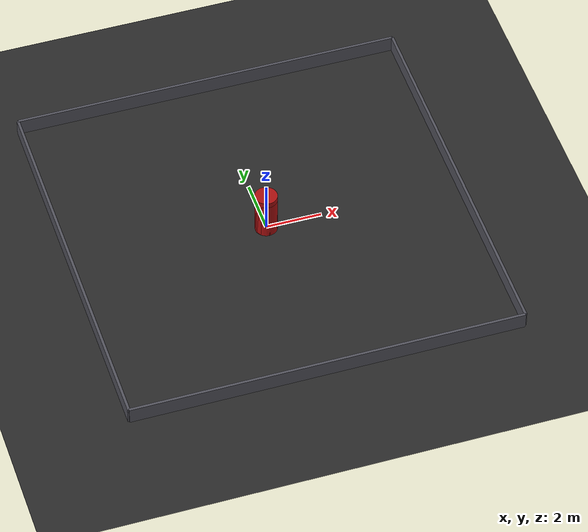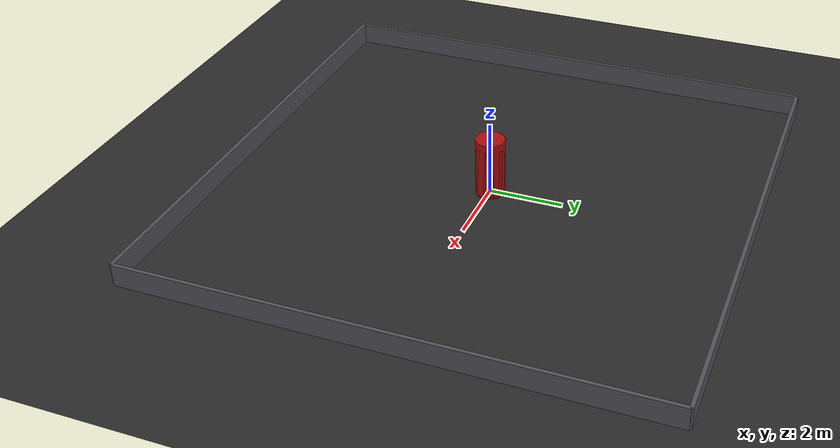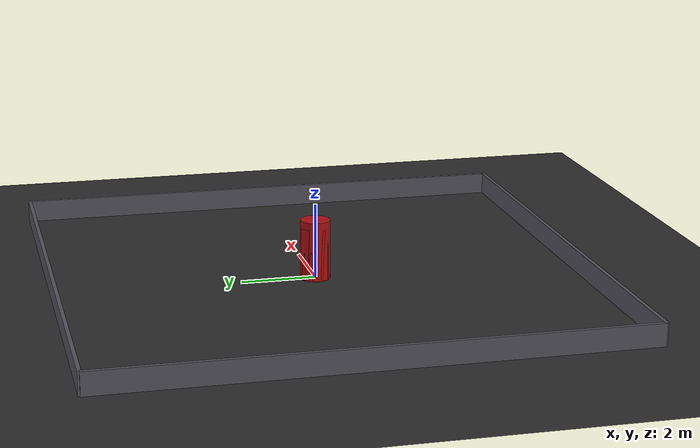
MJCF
<mujoco model="two_wheel_two_cams">
  <option timestep="0.002" gravity="0 0 -9.81" />
  <size nstack="300000" nuser_sensor="0" />
  <visual>
    <map znear="0.001" />
  </visual>
  <asset>
    <texture name="texplane" type="2d" builtin="checker" width="128" height="128" rgb1="0.8 0.8 0.8" rgb2="0.9 0.9 0.9" />
    <texture name="texwall" type="2d" builtin="checker" width="64" height="64" rgb1="0.75 0.75 0.82" rgb2="0.55 0.55 0.62" />
    <texture name="texobs" type="2d" builtin="checker" width="32" height="32" rgb1="0.7 0.2 0.2" rgb2="0.9 0.4 0.4" random="0.3" />
    <material name="matplane" texture="texplane" texrepeat="6 6" reflectance="0.0" texuniform="true" rgba="0.2 0.2 0.2 1" specular="0.05" />
    <material name="matgoal" rgba="0.2 0.85 0.2 1" />
    <material name="matwall" texture="texwall" texrepeat="2 1" texuniform="true" rgba="0.5 0.5 0.5 1" specular="0.05" />
    <material name="matrobot" rgba="0.2 0.4 0.8 1" />
    <material name="matwheel" rgba="0.1 0.1 0.1 1" />
    <material name="matobs" texture="texobs" texrepeat="3 3" texuniform="true" rgba="0.85 0.2 0.2 1" specular="0.05" />
  </asset>
  <worldbody>
    <light name="light_top" pos="0 0 6" dir="0 0 -1" diffuse="0.3 0.3 0.3" specular="0.0 0.0 0.0" ambient="0.6 0.6 0.6" directional="true" castshadow="false"/>
    <light name="light_west" pos="-4 0 3" dir="1 0 -0.4" diffuse="0.1 0.1 0.1" specular="0.0 0.0 0.0" ambient="0.3 0.3 0.3" directional="true" castshadow="false"/>
    <light name="light_east" pos="4 0 3" dir="-1 0 -0.4" diffuse="0.1 0.1 0.1" specular="0.0 0.0 0.0" ambient="0.3 0.3 0.3" directional="true" castshadow="false"/>
    <geom name="floor" type="plane" size="20 20 0.1" pos="0 0 0" material="matplane" condim="3" friction="1.0 0.005 0.0001" contype="1" conaffinity="7" />
    <geom name="wall_n" type="box" size="7 0.05 0.3" pos="0 7 0.3" material="matwall" contype="1" conaffinity="7" />
    <geom name="wall_s" type="box" size="7 0.05 0.3" pos="0 -7 0.3" material="matwall" contype="1" conaffinity="7" />
    <geom name="wall_e" type="box" size="0.05 7 0.3" pos="7 0 0.3" material="matwall" contype="1" conaffinity="7" />
    <geom name="wall_w" type="box" size="0.05 7 0.3" pos="-7 0 0.3" material="matwall" contype="1" conaffinity="7" />
    <body name="obstacle0_body" pos="0 0 0.8">
      <inertial pos="0 0 0" mass="30" diaginertia="2 2 2" />
      <joint name="obstacle0_x" type="slide" axis="1 0 0" limited="true" range="-1e-6 1e-6" />
      <joint name="obstacle0_y" type="slide" axis="0 1 0" limited="true" range="-1e-6 1e-6" />
      <joint name="obstacle0_z" type="slide" axis="0 0 1" limited="true" range="-1e-6 1e-6" />
      <geom name="obstacle0" type="cylinder" size="0.4 0.8 0" pos="0 0 0" friction="8.0 0.5 0.1" material="matobs" contype="1" conaffinity="7" solref="0.001 1" solimp="0.98 0.995 0.0001" />
    </body>
    <body name="obstacle1_body" pos="0 0 0.8">
      <inertial pos="0 0 0" mass="30" diaginertia="2 2 2" />
      <joint name="obstacle1_x" type="slide" axis="1 0 0" limited="true" range="-1e-6 1e-6" />
      <joint name="obstacle1_y" type="slide" axis="0 1 0" limited="true" range="-1e-6 1e-6" />
      <joint name="obstacle1_z" type="slide" axis="0 0 1" limited="true" range="-1e-6 1e-6" />
      <geom name="obstacle1" type="cylinder" size="0.4 0.8 0" pos="0 0 0" friction="8.0 0.5 0.1" material="matobs" contype="1" conaffinity="7" solref="0.001 1" solimp="0.98 0.995 0.0001" />
    </body>
    <body name="obstacle2_body" pos="0 0 0.6">
      <inertial pos="0 0 0" mass="30" diaginertia="2 2 2" />
      <joint name="obstacle2_x" type="slide" axis="1 0 0" limited="true" range="-1e-6 1e-6" />
      <joint name="obstacle2_y" type="slide" axis="0 1 0" limited="true" range="-1e-6 1e-6" />
      <joint name="obstacle2_z" type="slide" axis="0 0 1" limited="true" range="-1e-6 1e-6" />
      <geom name="obstacle2" type="cylinder" size="0.4 0.8 0" pos="0 0 0" friction="8.0 0.5 0.1" material="matobs" contype="1" conaffinity="7" solref="0.001 1" solimp="0.98 0.995 0.0001" />
    </body>
    <body name="obstacle3_body" pos="0 0 0.8">
      <inertial pos="0 0 0" mass="30" diaginertia="2 2 2" />
      <joint name="obstacle3_x" type="slide" axis="1 0 0" limited="true" range="-1e-6 1e-6" />
      <joint name="obstacle3_y" type="slide" axis="0 1 0" limited="true" range="-1e-6 1e-6" />
      <joint name="obstacle3_z" type="slide" axis="0 0 1" limited="true" range="-1e-6 1e-6" />
      <geom name="obstacle3" type="cylinder" size="0.4 0.8 0" pos="0 0 0" friction="8.0 0.5 0.1" material="matobs" contype="1" conaffinity="7" solref="0.001 1" solimp="0.98 0.995 0.0001" />
    </body>
    <body name="obstacle4_body" pos="0 0 0.8">
      <inertial pos="0 0 0" mass="30" diaginertia="2 2 2" />
      <joint name="obstacle4_x" type="slide" axis="1 0 0" limited="true" range="-1e-6 1e-6" />
      <joint name="obstacle4_y" type="slide" axis="0 1 0" limited="true" range="-1e-6 1e-6" />
      <joint name="obstacle4_z" type="slide" axis="0 0 1" limited="true" range="-1e-6 1e-6" />
      <geom name="obstacle4" type="cylinder" size="0.4 0.8 0" pos="0 0 0" friction="8.0 0.5 0.1" material="matobs" contype="1" conaffinity="7" solref="0.001 1" solimp="0.98 0.995 0.0001" />
    </body>
    <body name="obstacle5_body" pos="0 0 0.8">
      <inertial pos="0 0 0" mass="30" diaginertia="2 2 2" />
      <joint name="obstacle5_x" type="slide" axis="1 0 0" limited="true" range="-1e-6 1e-6" />
      <joint name="obstacle5_y" type="slide" axis="0 1 0" limited="true" range="-1e-6 1e-6" />
      <joint name="obstacle5_z" type="slide" axis="0 0 1" limited="true" range="-1e-6 1e-6" />
      <geom name="obstacle5" type="cylinder" size="0.4 0.8 0" pos="0 0 0" friction="8.0 0.5 0.1" material="matobs" contype="1" conaffinity="7" solref="0.001 1" solimp="0.98 0.995 0.0001" />
    </body>
    <body name="obstacle6_body" pos="0 0 0.8">
      <inertial pos="0 0 0" mass="30" diaginertia="2 2 2" />
      <joint name="obstacle6_x" type="slide" axis="1 0 0" limited="true" range="-1e-6 1e-6" />
      <joint name="obstacle6_y" type="slide" axis="0 1 0" limited="true" range="-1e-6 1e-6" />
      <joint name="obstacle6_z" type="slide" axis="0 0 1" limited="true" range="-1e-6 1e-6" />
      <geom name="obstacle6" type="cylinder" size="0.4 0.8 0" pos="0 0 0" friction="8.0 0.5 0.1" material="matobs" contype="1" conaffinity="7" solref="0.001 1" solimp="0.98 0.995 0.0001" />
    </body>
    <body name="obstacle7_body" pos="0 0 0.6">
      <inertial pos="0 0 0" mass="30" diaginertia="2 2 2" />
      <joint name="obstacle7_x" type="slide" axis="1 0 0" limited="true" range="-1e-6 1e-6" />
      <joint name="obstacle7_y" type="slide" axis="0 1 0" limited="true" range="-1e-6 1e-6" />
      <joint name="obstacle7_z" type="slide" axis="0 0 1" limited="true" range="-1e-6 1e-6" />
      <geom name="obstacle7" type="cylinder" size="0.4 0.8 0" pos="0 0 0" friction="8.0 0.5 0.1" material="matobs" contype="1" conaffinity="7" solref="0.001 1" solimp="0.98 0.995 0.0001" />
    </body>
    <body name="obstacle8_body" pos="0 0 0.8">
      <inertial pos="0 0 0" mass="30" diaginertia="2 2 2" />
      <joint name="obstacle8_x" type="slide" axis="1 0 0" limited="true" range="-1e-6 1e-6" />
      <joint name="obstacle8_y" type="slide" axis="0 1 0" limited="true" range="-1e-6 1e-6" />
      <joint name="obstacle8_z" type="slide" axis="0 0 1" limited="true" range="-1e-6 1e-6" />
      <geom name="obstacle8" type="cylinder" size="0.4 0.8 0" pos="0 0 0" friction="8.0 0.5 0.1" material="matobs" contype="1" conaffinity="7" solref="0.001 1" solimp="0.98 0.995 0.0001" />
    </body>
    <body name="obstacle9_body" pos="0 0 0.8">
      <inertial pos="0 0 0" mass="30" diaginertia="2 2 2" />
      <joint name="obstacle9_x" type="slide" axis="1 0 0" limited="true" range="-1e-6 1e-6" />
      <joint name="obstacle9_y" type="slide" axis="0 1 0" limited="true" range="-1e-6 1e-6" />
      <joint name="obstacle9_z" type="slide" axis="0 0 1" limited="true" range="-1e-6 1e-6" />
      <geom name="obstacle9" type="cylinder" size="0.4 0.8 0" pos="0 0 0" friction="8.0 0.5 0.1" material="matobs" contype="1" conaffinity="7" solref="0.001 1" solimp="0.98 0.995 0.0001" />
    </body>
    <body name="obstacle10_body" pos="0 0 0.8">
      <inertial pos="0 0 0" mass="30" diaginertia="2 2 2" />
      <joint name="obstacle10_x" type="slide" axis="1 0 0" limited="true" range="-1e-6 1e-6" />
      <joint name="obstacle10_y" type="slide" axis="0 1 0" limited="true" range="-1e-6 1e-6" />
      <joint name="obstacle10_z" type="slide" axis="0 0 1" limited="true" range="-1e-6 1e-6" />
      <geom name="obstacle10" type="cylinder" size="0.4 0.8 0" pos="0 0 0" friction="8.0 0.5 0.1" material="matobs" contype="1" conaffinity="7" solref="0.001 1" solimp="0.98 0.995 0.0001" />
    </body>
    <body name="obstacle11_body" pos="0 0 0.8">
      <inertial pos="0 0 0" mass="30" diaginertia="2 2 2" />
      <joint name="obstacle11_x" type="slide" axis="1 0 0" limited="true" range="-1e-6 1e-6" />
      <joint name="obstacle11_y" type="slide" axis="0 1 0" limited="true" range="-1e-6 1e-6" />
      <joint name="obstacle11_z" type="slide" axis="0 0 1" limited="true" range="-1e-6 1e-6" />
      <geom name="obstacle11" type="cylinder" size="0.4 0.8 0" pos="0 0 0" friction="8.0 0.5 0.1" material="matobs" contype="1" conaffinity="7" solref="0.001 1" solimp="0.98 0.995 0.0001" />
    </body>
    <body name="obstacle12_body" pos="0 0 0.6">
      <inertial pos="0 0 0" mass="30" diaginertia="2 2 2" />
      <joint name="obstacle12_x" type="slide" axis="1 0 0" limited="true" range="-1e-6 1e-6" />
      <joint name="obstacle12_y" type="slide" axis="0 1 0" limited="true" range="-1e-6 1e-6" />
      <joint name="obstacle12_z" type="slide" axis="0 0 1" limited="true" range="-1e-6 1e-6" />
      <geom name="obstacle12" type="cylinder" size="0.4 0.8 0" pos="0 0 0" friction="8.0 0.5 0.1" material="matobs" contype="1" conaffinity="7" solref="0.001 1" solimp="0.98 0.995 0.0001" />
    </body>
    <body name="obstacle13_body" pos="0 0 0.8">
      <inertial pos="0 0 0" mass="30" diaginertia="2 2 2" />
      <joint name="obstacle13_x" type="slide" axis="1 0 0" limited="true" range="-1e-6 1e-6" />
      <joint name="obstacle13_y" type="slide" axis="0 1 0" limited="true" range="-1e-6 1e-6" />
      <joint name="obstacle13_z" type="slide" axis="0 0 1" limited="true" range="-1e-6 1e-6" />
      <geom name="obstacle13" type="cylinder" size="0.4 0.8 0" pos="0 0 0" friction="8.0 0.5 0.1" material="matobs" contype="1" conaffinity="7" solref="0.001 1" solimp="0.98 0.995 0.0001" />
    </body>
    <body name="obstacle14_body" pos="0 0 0.8">
      <inertial pos="0 0 0" mass="30" diaginertia="2 2 2" />
      <joint name="obstacle14_x" type="slide" axis="1 0 0" limited="true" range="-1e-6 1e-6" />
      <joint name="obstacle14_y" type="slide" axis="0 1 0" limited="true" range="-1e-6 1e-6" />
      <joint name="obstacle14_z" type="slide" axis="0 0 1" limited="true" range="-1e-6 1e-6" />
      <geom name="obstacle14" type="cylinder" size="0.4 0.8 0" pos="0 0 0" friction="8.0 0.5 0.1" material="matobs" contype="1" conaffinity="7" solref="0.001 1" solimp="0.98 0.995 0.0001" />
    </body>
    <body name="obstacle15_body" pos="0 0 0.8">
      <inertial pos="0 0 0" mass="30" diaginertia="2 2 2" />
      <joint name="obstacle15_x" type="slide" axis="1 0 0" limited="true" range="-1e-6 1e-6" />
      <joint name="obstacle15_y" type="slide" axis="0 1 0" limited="true" range="-1e-6 1e-6" />
      <joint name="obstacle15_z" type="slide" axis="0 0 1" limited="true" range="-1e-6 1e-6" />
      <geom name="obstacle15" type="cylinder" size="0.4 0.8 0" pos="0 0 0" friction="8.0 0.5 0.1" material="matobs" contype="1" conaffinity="7" solref="0.001 1" solimp="0.98 0.995 0.0001" />
    </body>
    <body name="obstacle16_body" pos="0 0 0.8">
      <inertial pos="0 0 0" mass="30" diaginertia="2 2 2" />
      <joint name="obstacle16_x" type="slide" axis="1 0 0" limited="true" range="-1e-6 1e-6" />
      <joint name="obstacle16_y" type="slide" axis="0 1 0" limited="true" range="-1e-6 1e-6" />
      <joint name="obstacle16_z" type="slide" axis="0 0 1" limited="true" range="-1e-6 1e-6" />
      <geom name="obstacle16" type="cylinder" size="0.4 0.8 0" pos="0 0 0" friction="8.0 0.5 0.1" material="matobs" contype="1" conaffinity="7" solref="0.001 1" solimp="0.98 0.995 0.0001" />
    </body>
    <body name="obstacle17_body" pos="0 0 0.6">
      <inertial pos="0 0 0" mass="30" diaginertia="2 2 2" />
      <joint name="obstacle17_x" type="slide" axis="1 0 0" limited="true" range="-1e-6 1e-6" />
      <joint name="obstacle17_y" type="slide" axis="0 1 0" limited="true" range="-1e-6 1e-6" />
      <joint name="obstacle17_z" type="slide" axis="0 0 1" limited="true" range="-1e-6 1e-6" />
      <geom name="obstacle17" type="cylinder" size="0.4 0.8 0" pos="0 0 0" friction="8.0 0.5 0.1" material="matobs" contype="1" conaffinity="7" solref="0.001 1" solimp="0.98 0.995 0.0001" />
    </body>
    <body name="obstacle18_body" pos="0 0 0.8">
      <inertial pos="0 0 0" mass="30" diaginertia="2 2 2" />
      <joint name="obstacle18_x" type="slide" axis="1 0 0" limited="true" range="-1e-6 1e-6" />
      <joint name="obstacle18_y" type="slide" axis="0 1 0" limited="true" range="-1e-6 1e-6" />
      <joint name="obstacle18_z" type="slide" axis="0 0 1" limited="true" range="-1e-6 1e-6" />
      <geom name="obstacle18" type="cylinder" size="0.4 0.8 0" pos="0 0 0" friction="8.0 0.5 0.1" material="matobs" contype="1" conaffinity="7" solref="0.001 1" solimp="0.98 0.995 0.0001" />
    </body>
    <body name="obstacle19_body" pos="0 0 0.8">
      <inertial pos="0 0 0" mass="30" diaginertia="2 2 2" />
      <joint name="obstacle19_x" type="slide" axis="1 0 0" limited="true" range="-1e-6 1e-6" />
      <joint name="obstacle19_y" type="slide" axis="0 1 0" limited="true" range="-1e-6 1e-6" />
      <joint name="obstacle19_z" type="slide" axis="0 0 1" limited="true" range="-1e-6 1e-6" />
      <geom name="obstacle19" type="cylinder" size="0.4 0.8 0" pos="0 0 0" friction="8.0 0.5 0.1" material="matobs" contype="1" conaffinity="7" solref="0.001 1" solimp="0.98 0.995 0.0001" />
    </body>
    <site name="goal_site" pos="0 0 0.25" size="0.25" rgba="1.0 1.0 1.0 1.0" />
    <!-- Robot -->
    <body name="base" pos="0 0 0.11">
      <freejoint name="base_free"/>

      <!-- Chassis -->
      <geom name="base_geom" type="cylinder" size="0.2 0.09" pos="0.0 0.0 0.0"
            material="matrobot" condim="3" solref="0.001 1" solimp="0.98 0.995 0.0001" contype="2" conaffinity="1"  density="100"/>

      <!-- Wheels (vertical) -->
      <body name="left_wheel" pos="-0.05 0.18 -0.05">
        <joint name="left_hinge" type="hinge" axis="0 1 0" limited="false" damping="0.2" armature="0.02"/>
        <geom name="left_wheel_geom" type="cylinder" size="0.06 0.02"
              euler="90 0 0" material="matwheel" friction="1 0.1 0.0" condim="3"  contype="4" conaffinity="1"  density="100"/>
        <geom name="left_wheel_dot" type="sphere" size="0.015"
              pos="0 0.04 -0.03" rgba="1 0 0 1" contype="0" conaffinity="0"/>
      </body>
      <body name="right_wheel" pos="-0.05 -0.18 -0.05">
        <joint name="right_hinge" type="hinge" axis="0 1 0" limited="false" damping="0.2" armature="0.02"/>
        <geom name="right_wheel_geom" type="cylinder" size="0.06 0.02"
              euler="90 0 0" material="matwheel" friction="1 0.1 0.0" condim="3" contype="4" conaffinity="1"  density="100"/>
        <geom name="right_wheel_dot" type="sphere" size="0.015"
              pos="0 -0.04 -0.03" rgba="1 0 0 1" contype="0" conaffinity="0"/>
      </body>
      <body name="front_caster_mount" pos="0.15 0 -0.05">
        <joint name="caster_swivel" type="hinge" axis="0 0 1" damping="0.05" pos="0 0 0"/>
        <geom name="caster_fork" type="capsule" fromto="0 0 0 -0.03 0 -0.02" size="0.01" material="matwheel"  density="100"/>
        <body name="caster_wheel" pos="-0.03 0 -0.02">
            <joint name="caster_axle" type="hinge" axis="0 1 0" damping="0.001"/>
            <geom name="caster_wheel_geom" type="cylinder" size="0.04 0.015" euler="90 0 0"
                  material="matwheel" condim="3" friction="1.0 0.005 0.0001"  contype="4" conaffinity="1"/>
        </body>
      </body>

      <!-- Cameras + markers -->
        <camera name="cam_left"  pos="0.12  0.07 0.09" euler="90 -35 0" fovy="120"/>
        <camera name="cam_right" pos="0.12 -0.07 0.09" euler="-90 -35 180" fovy="120"/>
        <geom name="cam_left_marker"  type="sphere" size="0.03"
                pos="0.12  0.07 0.1" rgba="1 0 0 1" contype="0" conaffinity="0"  density="100"/>
        <geom name="cam_right_marker" type="sphere" size="0.03"
                pos="0.12 -0.07 0.1" rgba="1 0 0 1" contype="0" conaffinity="0"  density="100"/>
    </body>
  </worldbody>
  <actuator>
    <motor name="left_motor" joint="left_hinge" gear="3" ctrlrange="-2 2" />
    <motor name="right_motor" joint="right_hinge" gear="3" ctrlrange="-2 2" />
  </actuator>
</mujoco>
